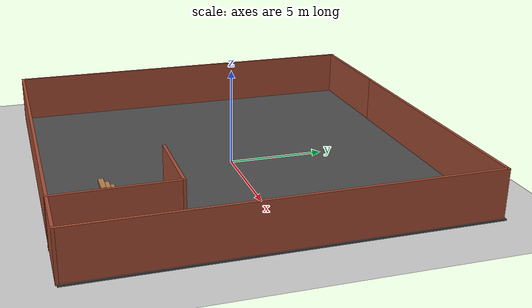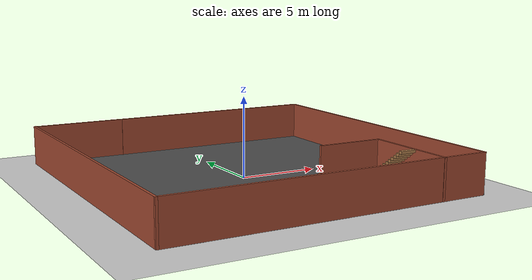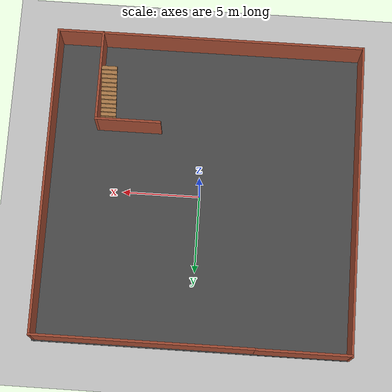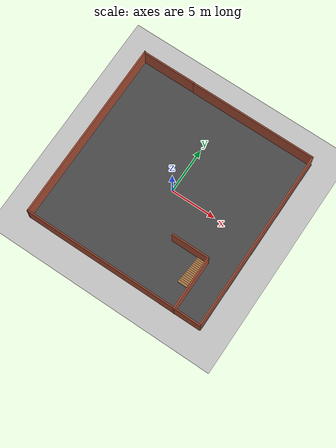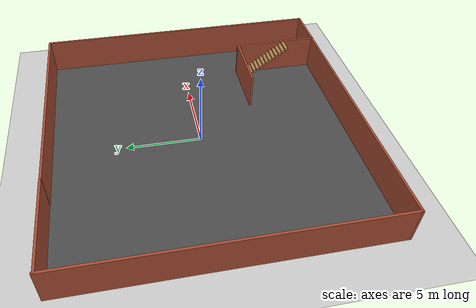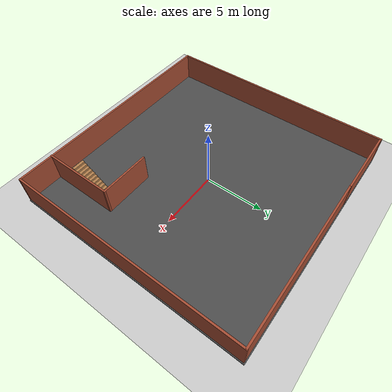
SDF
<sdf version="1.6">
 <world name="default">
  <light name="sun" type="directional">
   <pose>0 0 10 0 -0 0</pose>
   <diffuse>0.8 0.8 0.8 1</diffuse>
   <specular>0.2 0.2 0.2 1</specular>
   <attenuation>
    <range>1000</range>
    <constant>0.9</constant>
    <linear>0.01</linear>
    <quadratic>0.001</quadratic>
   </attenuation>
   <direction>-0.5 0.1 -0.9</direction>
  </light>
  <model name="ground_plane">
   <static>1</static>
   <link name="link">
    <collision name="collision">
     <geometry><plane><normal>0 0 1</normal><size>100 100</size></plane></geometry>
     <surface><friction><ode><mu>100</mu><mu2>50</mu2></ode></friction></surface>
    </collision>
    <visual name="visual">
     <cast_shadows>0</cast_shadows>
     <geometry><plane><normal>0 0 1</normal><size>100 100</size></plane></geometry>
     <material>
      <script><uri>file://media/materials/scripts/gazebo.material</uri><name>Gazebo/Grey</name></script>
     </material>
    </visual>
   </link>
  </model>
  <gravity>0 0 -9.8</gravity>
  <magnetic_field>6e-06 2.3e-05 -4.2e-05</magnetic_field>
  <atmosphere type="adiabatic"/>
  <physics name="default_physics" default="0" type="ode">
   <max_step_size>0.001</max_step_size>
   <real_time_factor>1</real_time_factor>
   <real_time_update_rate>1000</real_time_update_rate>
  </physics>
  <scene><ambient>0.4 0.4 0.4 1</ambient><background>0.7 0.7 0.7 1</background><shadows>1</shadows></scene>
  <audio><device>default</device></audio>
  <spherical_coordinates>
   <surface_model>EARTH_WGS84</surface_model>
   <latitude_deg>0</latitude_deg>
   <longitude_deg>0</longitude_deg>
   <elevation>0</elevation>
   <heading_deg>0</heading_deg>
  </spherical_coordinates>
  <model name="asphalt_plane">
   <static>1</static>
   <link name="link">
    <collision name="collision"><geometry><box><size>20 20 0.1</size></box></geometry></collision>
    <visual name="visual">
     <cast_shadows>0</cast_shadows>
     <geometry><box><size>20 20 0.1</size></box></geometry>
     <material>
      <script>
       <uri>model://asphalt_plane/materials/scripts</uri>
       <uri>model://asphalt_plane/materials/textures</uri>
       <name>vrc/asphalt</name>
      </script>
     </material>
    </visual>
   </link>
  </model>
  <model name="fast-planner-world">
   <pose>-0.080149 -0.051053 0 0 -0 0</pose>
   <link name="Stairs_0">
    <visual name="Stairs_0_Visual_0">
     <pose>6.41139 -4.28873 0.083333 0 -0 0</pose>
     <geometry><box><size>1 0.233333 0.166667</size></box></geometry>
     <material>
      <script><uri>file://media/materials/scripts/gazebo.material</uri><name>Gazebo/Wood</name></script>
      <ambient>1 1 1 1</ambient>
     </material>
     <meta><layer>0</layer></meta>
    </visual>
    <collision name="Stairs_0_Collision_0">
     <geometry><box><size>1 0.233333 0.166667</size></box></geometry>
     <pose>6.41139 -4.28873 0.083333 0 -0 0</pose>
    </collision>
    <visual name="Stairs_0_Visual_1">
     <pose>6.41139 -4.52207 0.25 0 -0 0</pose>
     <geometry><box><size>1 0.233333 0.166667</size></box></geometry>
     <material>
      <script><uri>file://media/materials/scripts/gazebo.material</uri><name>Gazebo/Wood</name></script>
      <ambient>1 1 1 1</ambient>
     </material>
     <meta><layer>0</layer></meta>
    </visual>
    <collision name="Stairs_0_Collision_1">
     <geometry><box><size>1 0.233333 0.166667</size></box></geometry>
     <pose>6.41139 -4.52207 0.25 0 -0 0</pose>
    </collision>
    <visual name="Stairs_0_Visual_2">
     <pose>6.41139 -4.7554 0.416667 0 -0 0</pose>
     <geometry><box><size>1 0.233333 0.166667</size></box></geometry>
     <material>
      <script><uri>file://media/materials/scripts/gazebo.material</uri><name>Gazebo/Wood</name></script>
      <ambient>1 1 1 1</ambient>
     </material>
     <meta><layer>0</layer></meta>
    </visual>
    <collision name="Stairs_0_Collision_2">
     <geometry><box><size>1 0.233333 0.166667</size></box></geometry>
     <pose>6.41139 -4.7554 0.416667 0 -0 0</pose>
    </collision>
    <visual name="Stairs_0_Visual_3">
     <pose>6.41139 -4.98873 0.583333 0 -0 0</pose>
     <geometry><box><size>1 0.233333 0.166667</size></box></geometry>
     <material>
      <script><uri>file://media/materials/scripts/gazebo.material</uri><name>Gazebo/Wood</name></script>
      <ambient>1 1 1 1</ambient>
     </material>
     <meta><layer>0</layer></meta>
    </visual>
    <collision name="Stairs_0_Collision_3">
     <geometry><box><size>1 0.233333 0.166667</size></box></geometry>
     <pose>6.41139 -4.98873 0.583333 0 -0 0</pose>
    </collision>
    <visual name="Stairs_0_Visual_4">
     <pose>6.41139 -5.22207 0.75 0 -0 0</pose>
     <geometry><box><size>1 0.233333 0.166667</size></box></geometry>
     <material>
      <script><uri>file://media/materials/scripts/gazebo.material</uri><name>Gazebo/Wood</name></script>
      <ambient>1 1 1 1</ambient>
     </material>
     <meta><layer>0</layer></meta>
    </visual>
    <collision name="Stairs_0_Collision_4">
     <geometry><box><size>1 0.233333 0.166667</size></box></geometry>
     <pose>6.41139 -5.22207 0.75 0 -0 0</pose>
    </collision>
    <visual name="Stairs_0_Visual_5">
     <pose>6.41139 -5.4554 0.916667 0 -0 0</pose>
     <geometry><box><size>1 0.233333 0.166667</size></box></geometry>
     <material>
      <script><uri>file://media/materials/scripts/gazebo.material</uri><name>Gazebo/Wood</name></script>
      <ambient>1 1 1 1</ambient>
     </material>
     <meta><layer>0</layer></meta>
    </visual>
    <collision name="Stairs_0_Collision_5">
     <geometry><box><size>1 0.233333 0.166667</size></box></geometry>
     <pose>6.41139 -5.4554 0.916667 0 -0 0</pose>
    </collision>
    <visual name="Stairs_0_Visual_6">
     <pose>6.41139 -5.68873 1.08333 0 -0 0</pose>
     <geometry><box><size>1 0.233333 0.166667</size></box></geometry>
     <material>
      <script><uri>file://media/materials/scripts/gazebo.material</uri><name>Gazebo/Wood</name></script>
      <ambient>1 1 1 1</ambient>
     </material>
     <meta><layer>0</layer></meta>
    </visual>
    <collision name="Stairs_0_Collision_6">
     <geometry><box><size>1 0.233333 0.166667</size></box></geometry>
     <pose>6.41139 -5.68873 1.08333 0 -0 0</pose>
    </collision>
    <visual name="Stairs_0_Visual_7">
     <pose>6.41139 -5.92207 1.25 0 -0 0</pose>
     <geometry><box><size>1 0.233333 0.166667</size></box></geometry>
     <material>
      <script><uri>file://media/materials/scripts/gazebo.material</uri><name>Gazebo/Wood</name></script>
      <ambient>1 1 1 1</ambient>
     </material>
     <meta><layer>0</layer></meta>
    </visual>
    <collision name="Stairs_0_Collision_7">
     <geometry><box><size>1 0.233333 0.166667</size></box></geometry>
     <pose>6.41139 -5.92207 1.25 0 -0 0</pose>
    </collision>
    <visual name="Stairs_0_Visual_8">
     <pose>6.41139 -6.1554 1.41667 0 -0 0</pose>
     <geometry><box><size>1 0.233333 0.166667</size></box></geometry>
     <material>
      <script><uri>file://media/materials/scripts/gazebo.material</uri><name>Gazebo/Wood</name></script>
      <ambient>1 1 1 1</ambient>
     </material>
     <meta><layer>0</layer></meta>
    </visual>
    <collision name="Stairs_0_Collision_8">
     <geometry><box><size>1 0.233333 0.166667</size></box></geometry>
     <pose>6.41139 -6.1554 1.41667 0 -0 0</pose>
    </collision>
    <visual name="Stairs_0_Visual_9">
     <pose>6.41139 -6.38873 1.58333 0 -0 0</pose>
     <geometry><box><size>1 0.233333 0.166667</size></box></geometry>
     <material>
      <script><uri>file://media/materials/scripts/gazebo.material</uri><name>Gazebo/Wood</name></script>
      <ambient>1 1 1 1</ambient>
     </material>
     <meta><layer>0</layer></meta>
    </visual>
    <collision name="Stairs_0_Collision_9">
     <geometry><box><size>1 0.233333 0.166667</size></box></geometry>
     <pose>6.41139 -6.38873 1.58333 0 -0 0</pose>
    </collision>
    <visual name="Stairs_0_Visual_10">
     <pose>6.41139 -6.62207 1.75 0 -0 0</pose>
     <geometry><box><size>1 0.233333 0.166667</size></box></geometry>
     <material>
      <script><uri>file://media/materials/scripts/gazebo.material</uri><name>Gazebo/Wood</name></script>
      <ambient>1 1 1 1</ambient>
     </material>
     <meta><layer>0</layer></meta>
    </visual>
    <collision name="Stairs_0_Collision_10">
     <geometry><box><size>1 0.233333 0.166667</size></box></geometry>
     <pose>6.41139 -6.62207 1.75 0 -0 0</pose>
    </collision>
    <visual name="Stairs_0_Visual_11">
     <pose>6.41139 -6.8554 1.91667 0 -0 0</pose>
     <geometry><box><size>1 0.233333 0.166667</size></box></geometry>
     <material>
      <script><uri>file://media/materials/scripts/gazebo.material</uri><name>Gazebo/Wood</name></script>
      <ambient>1 1 1 1</ambient>
     </material>
     <meta><layer>0</layer></meta>
    </visual>
    <collision name="Stairs_0_Collision_11">
     <geometry><box><size>1 0.233333 0.166667</size></box></geometry>
     <pose>6.41139 -6.8554 1.91667 0 -0 0</pose>
    </collision>
    <visual name="Stairs_0_Visual_12">
     <pose>6.41139 -7.08873 2.08333 0 -0 0</pose>
     <geometry><box><size>1 0.233333 0.166667</size></box></geometry>
     <material>
      <script><uri>file://media/materials/scripts/gazebo.material</uri><name>Gazebo/Wood</name></script>
      <ambient>1 1 1 1</ambient>
     </material>
     <meta><layer>0</layer></meta>
    </visual>
    <collision name="Stairs_0_Collision_12">
     <geometry><box><size>1 0.233333 0.166667</size></box></geometry>
     <pose>6.41139 -7.08873 2.08333 0 -0 0</pose>
    </collision>
    <visual name="Stairs_0_Visual_13">
     <pose>6.41139 -7.32207 2.25 0 -0 0</pose>
     <geometry><box><size>1 0.233333 0.166667</size></box></geometry>
     <material>
      <script><uri>file://media/materials/scripts/gazebo.material</uri><name>Gazebo/Wood</name></script>
      <ambient>1 1 1 1</ambient>
     </material>
     <meta><layer>0</layer></meta>
    </visual>
    <collision name="Stairs_0_Collision_13">
     <geometry><box><size>1 0.233333 0.166667</size></box></geometry>
     <pose>6.41139 -7.32207 2.25 0 -0 0</pose>
    </collision>
    <visual name="Stairs_0_Visual_14">
     <pose>6.41139 -7.5554 2.41667 0 -0 0</pose>
     <geometry><box><size>1 0.233333 0.166667</size></box></geometry>
     <material>
      <script><uri>file://media/materials/scripts/gazebo.material</uri><name>Gazebo/Wood</name></script>
      <ambient>1 1 1 1</ambient>
     </material>
     <meta><layer>0</layer></meta>
    </visual>
    <collision name="Stairs_0_Collision_14">
     <geometry><box><size>1 0.233333 0.166667</size></box></geometry>
     <pose>6.41139 -7.5554 2.41667 0 -0 0</pose>
    </collision>
   </link>
   <link name="Wall_10">
    <collision name="Wall_10_Collision">
     <geometry><box><size>4.25 0.15 2.5</size></box></geometry>
     <pose>0 0 1.25 0 -0 0</pose>
    </collision>
    <visual name="Wall_10_Visual">
     <pose>0 0 1.25 0 -0 0</pose>
     <geometry><box><size>4.25 0.15 2.5</size></box></geometry>
     <material>
      <script><uri>file://media/materials/scripts/gazebo.material</uri><name>Gazebo/Bricks</name></script>
      <ambient>1 1 1 1</ambient>
     </material>
     <meta><layer>0</layer></meta>
    </visual>
    <pose>4.9662 -4.11965 0 0 -0 3.14159</pose>
   </link>
   <link name="Wall_2">
    <collision name="Wall_2_Collision">
     <geometry><box><size>14 0.15 2.5</size></box></geometry>
     <pose>0 0 1.25 0 -0 0</pose>
    </collision>
    <visual name="Wall_2_Visual">
     <pose>0 0 1.25 0 -0 0</pose>
     <geometry><box><size>14 0.15 2.5</size></box></geometry>
     <material>
      <script><uri>file://media/materials/scripts/gazebo.material</uri><name>Gazebo/Bricks</name></script>
      <ambient>1 1 1 1</ambient>
     </material>
     <meta><layer>0</layer></meta>
    </visual>
    <pose>3 9.90574 0 0 -0 0</pose>
   </link>
   <link name="Wall_3">
    <collision name="Wall_3_Collision">
     <geometry><box><size>20 0.15 2.5</size></box></geometry>
     <pose>0 0 1.25 0 -0 0</pose>
    </collision>
    <visual name="Wall_3_Visual">
     <pose>0 0 1.25 0 -0 0</pose>
     <geometry><box><size>20 0.15 2.5</size></box></geometry>
     <material>
      <script><uri>file://media/materials/scripts/gazebo.material</uri><name>Gazebo/Bricks</name></script>
      <ambient>1 1 1 1</ambient>
     </material>
     <meta><layer>0</layer></meta>
    </visual>
    <pose>9.925 -0.019257 0 0 -0 -1.5708</pose>
   </link>
   <link name="Wall_4">
    <collision name="Wall_4_Collision">
     <geometry><box><size>20 0.15 2.5</size></box></geometry>
     <pose>0 0 1.25 0 -0 0</pose>
    </collision>
    <visual name="Wall_4_Visual">
     <pose>0 0 1.25 0 -0 0</pose>
     <geometry><box><size>20 0.15 2.5</size></box></geometry>
     <material>
      <script><uri>file://media/materials/scripts/gazebo.material</uri><name>Gazebo/Bricks</name></script>
      <ambient>1 1 1 1</ambient>
     </material>
     <meta><layer>0</layer></meta>
    </visual>
    <pose>0 -9.94426 0 0 -0 3.14159</pose>
   </link>
   <link name="Wall_5">
    <collision name="Wall_5_Collision">
     <geometry><box><size>20.0639 0.15 2.5</size></box></geometry>
     <pose>0 0 1.25 0 -0 0</pose>
    </collision>
    <visual name="Wall_5_Visual">
     <pose>0 0 1.25 0 -0 0</pose>
     <geometry><box><size>20.0639 0.15 2.5</size></box></geometry>
     <material>
      <script><uri>file://media/materials/scripts/gazebo.material</uri><name>Gazebo/Bricks</name></script>
      <ambient>1 1 1 1</ambient>
     </material>
     <meta><layer>0</layer></meta>
    </visual>
    <pose>-9.925 0.012695 0 0 -0 1.5708</pose>
   </link>
   <link name="Wall_6">
    <collision name="Wall_6_Collision">
     <geometry><box><size>6 0.15 2.5</size></box></geometry>
     <pose>0 0 1.25 0 -0 0</pose>
    </collision>
    <visual name="Wall_6_Visual">
     <pose>0 0 1.25 0 -0 0</pose>
     <geometry><box><size>6 0.15 2.5</size></box></geometry>
     <material>
      <script><uri>file://media/materials/scripts/gazebo.material</uri><name>Gazebo/Bricks</name></script>
      <ambient>1 1 1 1</ambient>
     </material>
     <meta><layer>0</layer></meta>
    </visual>
    <pose>-6.95348 9.92312 0 0 -0 0</pose>
   </link>
   <link name="Wall_9">
    <collision name="Wall_9_Collision">
     <geometry><box><size>6 0.15 2.5</size></box></geometry>
     <pose>0 0 1.25 0 -0 0</pose>
    </collision>
    <visual name="Wall_9_Visual">
     <pose>0 0 1.25 0 -0 0</pose>
     <geometry><box><size>6 0.15 2.5</size></box></geometry>
     <material>
      <script><uri>file://media/materials/scripts/gazebo.material</uri><name>Gazebo/Bricks</name></script>
      <ambient>1 1 1 1</ambient>
     </material>
     <meta><layer>0</layer></meta>
    </visual>
    <pose>7.0162 -7.04465 0 0 -0 1.5708</pose>
   </link>
   <static>1</static>
  </model>
 </world>
</sdf>
